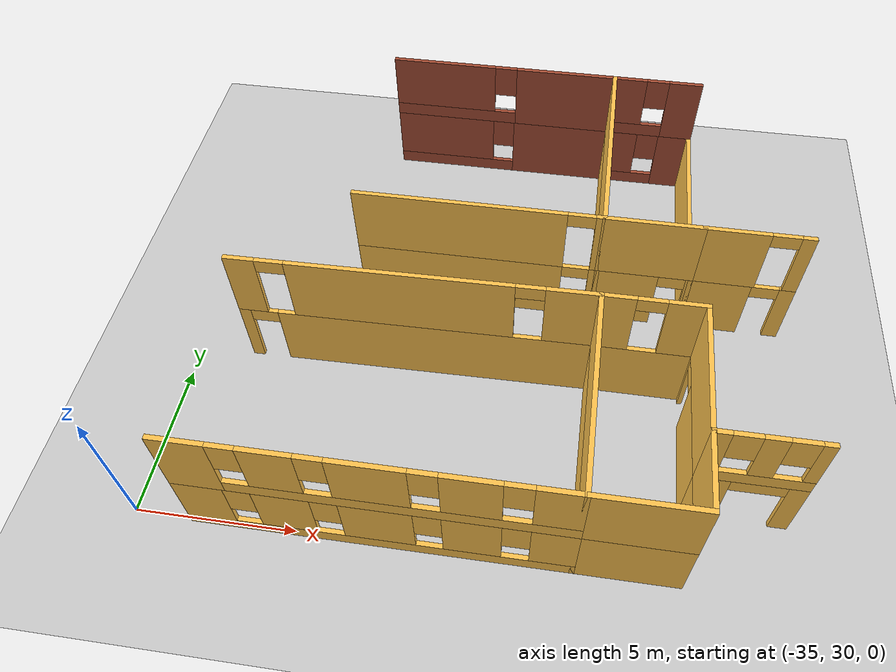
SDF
<sdf version="1.7">
 <world name="default">
  <model name="ground_plane">
   <static>1</static>
   <link name="link">
    <collision name="collision">
     <geometry><plane><normal>0 0 1</normal><size>100 100</size></plane></geometry>
     <surface>
      <contact><collide_bitmask>65535</collide_bitmask></contact>
      <friction><ode><mu>100</mu><mu2>50</mu2></ode></friction>
     </surface>
    </collision>
    <visual name="visual">
     <cast_shadows>0</cast_shadows>
     <geometry><plane><normal>0 0 1</normal><size>100 100</size></plane></geometry>
     <material>
      <script><uri>file://media/materials/scripts/gazebo.material</uri><name>Gazebo/Grey</name></script>
     </material>
    </visual>
   </link>
  </model>
  <model name="DepartmentBuilding">
   <pose>-25.6559 18.8293 0 0 -0 0</pose>
   <link name="Wall_250">
    <collision name="Wall_250_Collision">
     <geometry><box><size>7.25 0.15 2.5</size></box></geometry>
     <pose>0 0 1.25 0 -0 0</pose>
    </collision>
    <visual name="Wall_250_Visual">
     <pose>0 0 1.25 0 -0 0</pose>
     <geometry><box><size>7.25 0.15 2.5</size></box></geometry>
     <material>
      <script><uri>file://media/materials/scripts/gazebo.material</uri><name>Gazebo/Grey</name></script>
      <ambient>1 0.764706 0.305882 1</ambient>
     </material>
     <meta><layer>0</layer></meta>
    </visual>
    <pose>6.91941 24.1391 0 0 -0 -1.5708</pose>
   </link>
   <link name="Wall_251">
    <pose>8.59441 20.5891 0 0 -0 0</pose>
    <visual name="Wall_251_Visual_0">
     <pose>-0.710133 0 1.25 0 -0 0</pose>
     <geometry><box><size>2.07973 0.15 2.5</size></box></geometry>
     <material>
      <script><uri>file://media/materials/scripts/gazebo.material</uri><name>Gazebo/Grey</name></script>
      <ambient>1 0.764706 0.305882 1</ambient>
     </material>
     <meta><layer>0</layer></meta>
    </visual>
    <collision name="Wall_251_Collision_0">
     <geometry><box><size>2.07973 0.15 2.5</size></box></geometry>
     <pose>-0.710133 0 1.25 0 -0 0</pose>
    </collision>
    <visual name="Wall_251_Visual_1">
     <pose>1.48987 0 1.25 0 -0 0</pose>
     <geometry><box><size>0.520267 0.15 2.5</size></box></geometry>
     <material>
      <script><uri>file://media/materials/scripts/gazebo.material</uri><name>Gazebo/Grey</name></script>
      <ambient>1 0.764706 0.305882 1</ambient>
     </material>
     <meta><layer>0</layer></meta>
    </visual>
    <collision name="Wall_251_Collision_1">
     <geometry><box><size>0.520267 0.15 2.5</size></box></geometry>
     <pose>1.48987 0 1.25 0 -0 0</pose>
    </collision>
    <visual name="Wall_251_Visual_2">
     <pose>0.779733 0 2.25 0 -0 0</pose>
     <geometry><box><size>0.9 0.15 0.5</size></box></geometry>
     <material>
      <script><uri>file://media/materials/scripts/gazebo.material</uri><name>Gazebo/Grey</name></script>
      <ambient>1 0.764706 0.305882 1</ambient>
     </material>
     <meta><layer>0</layer></meta>
    </visual>
    <collision name="Wall_251_Collision_2">
     <geometry><box><size>0.9 0.15 0.5</size></box></geometry>
     <pose>0.779733 0 2.25 0 -0 0</pose>
    </collision>
   </link>
   <link name="Wall_253">
    <pose>5.36941 27.6891 0 0 -0 3.14159</pose>
    <visual name="Wall_253_Visual_0">
     <pose>-1.01415 0 1.25 0 -0 0</pose>
     <geometry><box><size>1.22169 0.15 2.5</size></box></geometry>
     <material>
      <script><uri>file://media/materials/scripts/gazebo.material</uri><name>Gazebo/Bricks</name></script>
      <ambient>1 1 1 1</ambient>
     </material>
     <meta><layer>0</layer></meta>
    </visual>
    <collision name="Wall_253_Collision_0">
     <geometry><box><size>1.22169 0.15 2.5</size></box></geometry>
     <pose>-1.01415 0 1.25 0 -0 0</pose>
    </collision>
    <visual name="Wall_253_Visual_1">
     <pose>0.610846 0 0.25 0 -0 0</pose>
     <geometry><box><size>2.02831 0.15 0.5</size></box></geometry>
     <material>
      <script><uri>file://media/materials/scripts/gazebo.material</uri><name>Gazebo/Bricks</name></script>
      <ambient>1 1 1 1</ambient>
     </material>
     <meta><layer>0</layer></meta>
    </visual>
    <collision name="Wall_253_Collision_1">
     <geometry><box><size>2.02831 0.15 0.5</size></box></geometry>
     <pose>0.610846 0 0.25 0 -0 0</pose>
    </collision>
    <visual name="Wall_253_Visual_2">
     <pose>1.01085 0 1.5 0 -0 0</pose>
     <geometry><box><size>1.22831 0.15 2</size></box></geometry>
     <material>
      <script><uri>file://media/materials/scripts/gazebo.material</uri><name>Gazebo/Bricks</name></script>
      <ambient>1 1 1 1</ambient>
     </material>
     <meta><layer>0</layer></meta>
    </visual>
    <collision name="Wall_253_Collision_2">
     <geometry><box><size>1.22831 0.15 2</size></box></geometry>
     <pose>1.01085 0 1.5 0 -0 0</pose>
    </collision>
    <visual name="Wall_253_Visual_3">
     <pose>-0.003308 0 1.9 0 -0 0</pose>
     <geometry><box><size>0.8 0.15 1.2</size></box></geometry>
     <material>
      <script><uri>file://media/materials/scripts/gazebo.material</uri><name>Gazebo/Bricks</name></script>
      <ambient>1 1 1 1</ambient>
     </material>
     <meta><layer>0</layer></meta>
    </visual>
    <collision name="Wall_253_Collision_3">
     <geometry><box><size>0.8 0.15 1.2</size></box></geometry>
     <pose>-0.003308 0 1.9 0 -0 0</pose>
    </collision>
   </link>
   <link name="Wall_254">
    <collision name="Wall_254_Collision">
     <geometry><box><size>7.25 0.15 2.5</size></box></geometry>
     <pose>0 0 1.25 0 -0 0</pose>
    </collision>
    <visual name="Wall_254_Visual">
     <pose>0 0 1.25 0 -0 0</pose>
     <geometry><box><size>7.25 0.15 2.5</size></box></geometry>
     <material>
      <script><uri>file://media/materials/scripts/gazebo.material</uri><name>Gazebo/Grey</name></script>
      <ambient>1 0.764706 0.305882 1</ambient>
     </material>
     <meta><layer>0</layer></meta>
    </visual>
    <pose>3.81941 24.1391 0 0 -0 -1.5708</pose>
   </link>
   <link name="Wall_255">
    <pose>5.36941 20.5891 0 0 -0 0</pose>
    <visual name="Wall_255_Visual_0">
     <pose>-0.563613 0 1.25 0 -0 0</pose>
     <geometry><box><size>2.12277 0.15 2.5</size></box></geometry>
     <material>
      <script><uri>file://media/materials/scripts/gazebo.material</uri><name>Gazebo/Grey</name></script>
      <ambient>1 0.764706 0.305882 1</ambient>
     </material>
     <meta><layer>0</layer></meta>
    </visual>
    <collision name="Wall_255_Collision_0">
     <geometry><box><size>2.12277 0.15 2.5</size></box></geometry>
     <pose>-0.563613 0 1.25 0 -0 0</pose>
    </collision>
    <visual name="Wall_255_Visual_1">
     <pose>1.51139 0 1.25 0 -0 0</pose>
     <geometry><box><size>0.227226 0.15 2.5</size></box></geometry>
     <material>
      <script><uri>file://media/materials/scripts/gazebo.material</uri><name>Gazebo/Grey</name></script>
      <ambient>1 0.764706 0.305882 1</ambient>
     </material>
     <meta><layer>0</layer></meta>
    </visual>
    <collision name="Wall_255_Collision_1">
     <geometry><box><size>0.227226 0.15 2.5</size></box></geometry>
     <pose>1.51139 0 1.25 0 -0 0</pose>
    </collision>
    <visual name="Wall_255_Visual_2">
     <pose>0.947774 0 2.25 0 -0 0</pose>
     <geometry><box><size>0.9 0.15 0.5</size></box></geometry>
     <material>
      <script><uri>file://media/materials/scripts/gazebo.material</uri><name>Gazebo/Grey</name></script>
      <ambient>1 0.764706 0.305882 1</ambient>
     </material>
     <meta><layer>0</layer></meta>
    </visual>
    <collision name="Wall_255_Collision_2">
     <geometry><box><size>0.9 0.15 0.5</size></box></geometry>
     <pose>0.947774 0 2.25 0 -0 0</pose>
    </collision>
   </link>
   <link name="Wall_257">
    <pose>-0.230591 27.6891 0 0 -0 3.14159</pose>
    <visual name="Wall_257_Visual_0">
     <pose>-2.27335 0 1.25 0 -0 0</pose>
     <geometry><box><size>3.7033 0.15 2.5</size></box></geometry>
     <material>
      <script><uri>file://media/materials/scripts/gazebo.material</uri><name>Gazebo/Bricks</name></script>
      <ambient>1 1 1 1</ambient>
     </material>
     <meta><layer>0</layer></meta>
    </visual>
    <collision name="Wall_257_Collision_0">
     <geometry><box><size>3.7033 0.15 2.5</size></box></geometry>
     <pose>-2.27335 0 1.25 0 -0 0</pose>
    </collision>
    <visual name="Wall_257_Visual_1">
     <pose>1.85165 0 0.25 0 -0 0</pose>
     <geometry><box><size>4.5467 0.15 0.5</size></box></geometry>
     <material>
      <script><uri>file://media/materials/scripts/gazebo.material</uri><name>Gazebo/Bricks</name></script>
      <ambient>1 1 1 1</ambient>
     </material>
     <meta><layer>0</layer></meta>
    </visual>
    <collision name="Wall_257_Collision_1">
     <geometry><box><size>4.5467 0.15 0.5</size></box></geometry>
     <pose>1.85165 0 0.25 0 -0 0</pose>
    </collision>
    <visual name="Wall_257_Visual_2">
     <pose>2.25165 0 1.5 0 -0 0</pose>
     <geometry><box><size>3.7467 0.15 2</size></box></geometry>
     <material>
      <script><uri>file://media/materials/scripts/gazebo.material</uri><name>Gazebo/Bricks</name></script>
      <ambient>1 1 1 1</ambient>
     </material>
     <meta><layer>0</layer></meta>
    </visual>
    <collision name="Wall_257_Collision_2">
     <geometry><box><size>3.7467 0.15 2</size></box></geometry>
     <pose>2.25165 0 1.5 0 -0 0</pose>
    </collision>
    <visual name="Wall_257_Visual_3">
     <pose>-0.021696 0 1.9 0 -0 0</pose>
     <geometry><box><size>0.8 0.15 1.2</size></box></geometry>
     <material>
      <script><uri>file://media/materials/scripts/gazebo.material</uri><name>Gazebo/Bricks</name></script>
      <ambient>1 1 1 1</ambient>
     </material>
     <meta><layer>0</layer></meta>
    </visual>
    <collision name="Wall_257_Collision_3">
     <geometry><box><size>0.8 0.15 1.2</size></box></geometry>
     <pose>-0.021696 0 1.9 0 -0 0</pose>
    </collision>
   </link>
   <link name="Wall_260">
    <pose>-0.230591 20.5891 0 0 -0 0</pose>
    <visual name="Wall_260_Visual_0">
     <pose>-0.62574 0 1.25 0 -0 0</pose>
     <geometry><box><size>6.99852 0.15 2.5</size></box></geometry>
     <material>
      <script><uri>file://media/materials/scripts/gazebo.material</uri><name>Gazebo/Grey</name></script>
      <ambient>1 0.764706 0.305882 1</ambient>
     </material>
     <meta><layer>0</layer></meta>
    </visual>
    <collision name="Wall_260_Collision_0">
     <geometry><box><size>6.99852 0.15 2.5</size></box></geometry>
     <pose>-0.62574 0 1.25 0 -0 0</pose>
    </collision>
    <visual name="Wall_260_Visual_1">
     <pose>3.94926 0 1.25 0 -0 0</pose>
     <geometry><box><size>0.351481 0.15 2.5</size></box></geometry>
     <material>
      <script><uri>file://media/materials/scripts/gazebo.material</uri><name>Gazebo/Grey</name></script>
      <ambient>1 0.764706 0.305882 1</ambient>
     </material>
     <meta><layer>0</layer></meta>
    </visual>
    <collision name="Wall_260_Collision_1">
     <geometry><box><size>0.351481 0.15 2.5</size></box></geometry>
     <pose>3.94926 0 1.25 0 -0 0</pose>
    </collision>
    <visual name="Wall_260_Visual_2">
     <pose>3.32352 0 2.25 0 -0 0</pose>
     <geometry><box><size>0.9 0.15 0.5</size></box></geometry>
     <material>
      <script><uri>file://media/materials/scripts/gazebo.material</uri><name>Gazebo/Grey</name></script>
      <ambient>1 0.764706 0.305882 1</ambient>
     </material>
     <meta><layer>0</layer></meta>
    </visual>
    <collision name="Wall_260_Collision_2">
     <geometry><box><size>0.9 0.15 0.5</size></box></geometry>
     <pose>3.32352 0 2.25 0 -0 0</pose>
    </collision>
   </link>
   <link name="Wall_314">
    <pose>-1.80559 11.1391 0 0 -0 0</pose>
    <visual name="Wall_314_Visual_0">
     <pose>-4.993 0 1.25 0 -0 0</pose>
     <geometry><box><size>1.51401 0.15 2.5</size></box></geometry>
     <material>
      <script><uri>file://media/materials/scripts/gazebo.material</uri><name>Gazebo/Grey</name></script>
      <ambient>1 0.764706 0.305882 1</ambient>
     </material>
     <meta><layer>0</layer></meta>
    </visual>
    <collision name="Wall_314_Collision_0">
     <geometry><box><size>1.51401 0.15 2.5</size></box></geometry>
     <pose>-4.993 0 1.25 0 -0 0</pose>
    </collision>
    <visual name="Wall_314_Visual_1">
     <pose>0.757004 0 0.25 0 -0 0</pose>
     <geometry><box><size>9.98599 0.15 0.5</size></box></geometry>
     <material>
      <script><uri>file://media/materials/scripts/gazebo.material</uri><name>Gazebo/Grey</name></script>
      <ambient>1 0.764706 0.305882 1</ambient>
     </material>
     <meta><layer>0</layer></meta>
    </visual>
    <collision name="Wall_314_Collision_1">
     <geometry><box><size>9.98599 0.15 0.5</size></box></geometry>
     <pose>0.757004 0 0.25 0 -0 0</pose>
    </collision>
    <visual name="Wall_314_Visual_2">
     <pose>-2.5985 0 1.5 0 -0 0</pose>
     <geometry><box><size>1.67498 0.15 2</size></box></geometry>
     <material>
      <script><uri>file://media/materials/scripts/gazebo.material</uri><name>Gazebo/Grey</name></script>
      <ambient>1 0.764706 0.305882 1</ambient>
     </material>
     <meta><layer>0</layer></meta>
    </visual>
    <collision name="Wall_314_Collision_2">
     <geometry><box><size>1.67498 0.15 2</size></box></geometry>
     <pose>-2.5985 0 1.5 0 -0 0</pose>
    </collision>
    <visual name="Wall_314_Visual_3">
     <pose>0.084647 0 1.5 0 -0 0</pose>
     <geometry><box><size>2.09133 0.15 2</size></box></geometry>
     <material>
      <script><uri>file://media/materials/scripts/gazebo.material</uri><name>Gazebo/Grey</name></script>
      <ambient>1 0.764706 0.305882 1</ambient>
     </material>
     <meta><layer>0</layer></meta>
    </visual>
    <collision name="Wall_314_Collision_3">
     <geometry><box><size>2.09133 0.15 2</size></box></geometry>
     <pose>0.084647 0 1.5 0 -0 0</pose>
    </collision>
    <visual name="Wall_314_Visual_4">
     <pose>2.7678 0 1.5 0 -0 0</pose>
     <geometry><box><size>1.67498 0.15 2</size></box></geometry>
     <material>
      <script><uri>file://media/materials/scripts/gazebo.material</uri><name>Gazebo/Grey</name></script>
      <ambient>1 0.764706 0.305882 1</ambient>
     </material>
     <meta><layer>0</layer></meta>
    </visual>
    <collision name="Wall_314_Collision_4">
     <geometry><box><size>1.67498 0.15 2</size></box></geometry>
     <pose>2.7678 0 1.5 0 -0 0</pose>
    </collision>
    <visual name="Wall_314_Visual_5">
     <pose>5.07764 0 1.5 0 -0 0</pose>
     <geometry><box><size>1.34472 0.15 2</size></box></geometry>
     <material>
      <script><uri>file://media/materials/scripts/gazebo.material</uri><name>Gazebo/Grey</name></script>
      <ambient>1 0.764706 0.305882 1</ambient>
     </material>
     <meta><layer>0</layer></meta>
    </visual>
    <collision name="Wall_314_Collision_5">
     <geometry><box><size>1.34472 0.15 2</size></box></geometry>
     <pose>5.07764 0 1.5 0 -0 0</pose>
    </collision>
    <visual name="Wall_314_Visual_6">
     <pose>-3.83599 0 1.9 0 -0 0</pose>
     <geometry><box><size>0.8 0.15 1.2</size></box></geometry>
     <material>
      <script><uri>file://media/materials/scripts/gazebo.material</uri><name>Gazebo/Grey</name></script>
      <ambient>1 0.764706 0.305882 1</ambient>
     </material>
     <meta><layer>0</layer></meta>
    </visual>
    <collision name="Wall_314_Collision_6">
     <geometry><box><size>0.8 0.15 1.2</size></box></geometry>
     <pose>-3.83599 0 1.9 0 -0 0</pose>
    </collision>
    <visual name="Wall_314_Visual_7">
     <pose>-1.36102 0 1.9 0 -0 0</pose>
     <geometry><box><size>0.8 0.15 1.2</size></box></geometry>
     <material>
      <script><uri>file://media/materials/scripts/gazebo.material</uri><name>Gazebo/Grey</name></script>
      <ambient>1 0.764706 0.305882 1</ambient>
     </material>
     <meta><layer>0</layer></meta>
    </visual>
    <collision name="Wall_314_Collision_7">
     <geometry><box><size>0.8 0.15 1.2</size></box></geometry>
     <pose>-1.36102 0 1.9 0 -0 0</pose>
    </collision>
    <visual name="Wall_314_Visual_8">
     <pose>1.53031 0 1.9 0 -0 0</pose>
     <geometry><box><size>0.8 0.15 1.2</size></box></geometry>
     <material>
      <script><uri>file://media/materials/scripts/gazebo.material</uri><name>Gazebo/Grey</name></script>
      <ambient>1 0.764706 0.305882 1</ambient>
     </material>
     <meta><layer>0</layer></meta>
    </visual>
    <collision name="Wall_314_Collision_8">
     <geometry><box><size>0.8 0.15 1.2</size></box></geometry>
     <pose>1.53031 0 1.9 0 -0 0</pose>
    </collision>
    <visual name="Wall_314_Visual_9">
     <pose>4.00528 0 1.9 0 -0 0</pose>
     <geometry><box><size>0.8 0.15 1.2</size></box></geometry>
     <material>
      <script><uri>file://media/materials/scripts/gazebo.material</uri><name>Gazebo/Grey</name></script>
      <ambient>1 0.764706 0.305882 1</ambient>
     </material>
     <meta><layer>0</layer></meta>
    </visual>
    <collision name="Wall_314_Collision_9">
     <geometry><box><size>0.8 0.15 1.2</size></box></geometry>
     <pose>4.00528 0 1.9 0 -0 0</pose>
    </collision>
   </link>
   <link name="Wall_315">
    <collision name="Wall_315_Collision">
     <geometry><box><size>6.5 0.15 2.5</size></box></geometry>
     <pose>0 0 1.25 0 -0 0</pose>
    </collision>
    <visual name="Wall_315_Visual">
     <pose>0 0 1.25 0 -0 0</pose>
     <geometry><box><size>6.5 0.15 2.5</size></box></geometry>
     <material>
      <script><uri>file://media/materials/scripts/gazebo.material</uri><name>Gazebo/Grey</name></script>
      <ambient>1 0.764706 0.305882 1</ambient>
     </material>
     <meta><layer>0</layer></meta>
    </visual>
    <pose>3.86941 14.3141 0 0 -0 1.5708</pose>
   </link>
   <link name="Wall_316">
    <pose>-1.80559 17.4141 0 0 -0 -3.12838</pose>
    <visual name="Wall_316_Visual_0">
     <pose>-0.64266 0 1.25 0 -0 0</pose>
     <geometry><box><size>10.2157 0.15 2.5</size></box></geometry>
     <material>
      <script><uri>file://media/materials/scripts/gazebo.material</uri><name>Gazebo/Grey</name></script>
      <ambient>1 0.764706 0.305882 1</ambient>
     </material>
     <meta><layer>0</layer></meta>
    </visual>
    <collision name="Wall_316_Collision_0">
     <geometry><box><size>10.2157 0.15 2.5</size></box></geometry>
     <pose>-0.64266 0 1.25 0 -0 0</pose>
    </collision>
    <visual name="Wall_316_Visual_1">
     <pose>5.55783 0 1.25 0 -0 0</pose>
     <geometry><box><size>0.38532 0.15 2.5</size></box></geometry>
     <material>
      <script><uri>file://media/materials/scripts/gazebo.material</uri><name>Gazebo/Grey</name></script>
      <ambient>1 0.764706 0.305882 1</ambient>
     </material>
     <meta><layer>0</layer></meta>
    </visual>
    <collision name="Wall_316_Collision_1">
     <geometry><box><size>0.38532 0.15 2.5</size></box></geometry>
     <pose>5.55783 0 1.25 0 -0 0</pose>
    </collision>
    <visual name="Wall_316_Visual_2">
     <pose>4.91517 0 2.25 0 -0 0</pose>
     <geometry><box><size>0.9 0.15 0.5</size></box></geometry>
     <material>
      <script><uri>file://media/materials/scripts/gazebo.material</uri><name>Gazebo/Grey</name></script>
      <ambient>1 0.764706 0.305882 1</ambient>
     </material>
     <meta><layer>0</layer></meta>
    </visual>
    <collision name="Wall_316_Collision_2">
     <geometry><box><size>0.9 0.15 0.5</size></box></geometry>
     <pose>4.91517 0 2.25 0 -0 0</pose>
    </collision>
   </link>
   <link name="Wall_318">
    <collision name="Wall_318_Collision">
     <geometry><box><size>3.25 0.15 2.5</size></box></geometry>
     <pose>0 0 1.25 0 -0 0</pose>
    </collision>
    <visual name="Wall_318_Visual">
     <pose>0 0 1.25 0 -0 0</pose>
     <geometry><box><size>3.25 0.15 2.5</size></box></geometry>
     <material>
      <script><uri>file://media/materials/scripts/gazebo.material</uri><name>Gazebo/Grey</name></script>
      <ambient>1 0.764706 0.305882 1</ambient>
     </material>
     <meta><layer>0</layer></meta>
    </visual>
    <pose>5.41941 17.4891 0 0 -0 0</pose>
   </link>
   <link name="Wall_319">
    <pose>6.96941 15.4391 0 0 -0 -1.5708</pose>
    <visual name="Wall_319_Visual_0">
     <pose>-1.97536 0 1.25 0 -0 0</pose>
     <geometry><box><size>0.299289 0.15 2.5</size></box></geometry>
     <material>
      <script><uri>file://media/materials/scripts/gazebo.material</uri><name>Gazebo/Grey</name></script>
      <ambient>1 0.764706 0.305882 1</ambient>
     </material>
     <meta><layer>0</layer></meta>
    </visual>
    <collision name="Wall_319_Collision_0">
     <geometry><box><size>0.299289 0.15 2.5</size></box></geometry>
     <pose>-1.97536 0 1.25 0 -0 0</pose>
    </collision>
    <visual name="Wall_319_Visual_1">
     <pose>0.599644 0 1.25 0 -0 0</pose>
     <geometry><box><size>3.05071 0.15 2.5</size></box></geometry>
     <material>
      <script><uri>file://media/materials/scripts/gazebo.material</uri><name>Gazebo/Grey</name></script>
      <ambient>1 0.764706 0.305882 1</ambient>
     </material>
     <meta><layer>0</layer></meta>
    </visual>
    <collision name="Wall_319_Collision_1">
     <geometry><box><size>3.05071 0.15 2.5</size></box></geometry>
     <pose>0.599644 0 1.25 0 -0 0</pose>
    </collision>
    <visual name="Wall_319_Visual_2">
     <pose>-1.37571 0 2.25 0 -0 0</pose>
     <geometry><box><size>0.9 0.15 0.5</size></box></geometry>
     <material>
      <script><uri>file://media/materials/scripts/gazebo.material</uri><name>Gazebo/Grey</name></script>
      <ambient>1 0.764706 0.305882 1</ambient>
     </material>
     <meta><layer>0</layer></meta>
    </visual>
    <collision name="Wall_319_Collision_2">
     <geometry><box><size>0.9 0.15 0.5</size></box></geometry>
     <pose>-1.37571 0 2.25 0 -0 0</pose>
    </collision>
   </link>
   <link name="Wall_320">
    <collision name="Wall_320_Collision">
     <geometry><box><size>2.4 0.15 2.5</size></box></geometry>
     <pose>0 0 1.25 0 -0 0</pose>
    </collision>
    <visual name="Wall_320_Visual">
     <pose>0 0 1.25 0 -0 0</pose>
     <geometry><box><size>2.4 0.15 2.5</size></box></geometry>
     <material>
      <script><uri>file://media/materials/scripts/gazebo.material</uri><name>Gazebo/Grey</name></script>
      <ambient>1 0.764706 0.305882 1</ambient>
     </material>
     <meta><layer>0</layer></meta>
    </visual>
    <pose>6.96941 12.2641 0 0 -0 -1.5708</pose>
   </link>
   <link name="Wall_322">
    <collision name="Wall_322_Collision">
     <geometry><box><size>3.25 0.15 2.5</size></box></geometry>
     <pose>0 0 1.25 0 -0 0</pose>
    </collision>
    <visual name="Wall_322_Visual">
     <pose>0 0 1.25 0 -0 0</pose>
     <geometry><box><size>3.25 0.15 2.5</size></box></geometry>
     <material>
      <script><uri>file://media/materials/scripts/gazebo.material</uri><name>Gazebo/Grey</name></script>
      <ambient>1 0.764706 0.305882 1</ambient>
     </material>
     <meta><layer>0</layer></meta>
    </visual>
    <pose>5.41941 11.1391 0 0 -0 3.14159</pose>
   </link>
   <link name="Wall_324">
    <pose>8.51941 13.3891 0 0 -0 0</pose>
    <visual name="Wall_324_Visual_0">
     <pose>-1.08723 0 1.25 0 -0 0</pose>
     <geometry><box><size>1.07554 0.15 2.5</size></box></geometry>
     <material>
      <script><uri>file://media/materials/scripts/gazebo.material</uri><name>Gazebo/Grey</name></script>
      <ambient>1 0.764706 0.305882 1</ambient>
     </material>
     <meta><layer>0</layer></meta>
    </visual>
    <collision name="Wall_324_Collision_0">
     <geometry><box><size>1.07554 0.15 2.5</size></box></geometry>
     <pose>-1.08723 0 1.25 0 -0 0</pose>
    </collision>
    <visual name="Wall_324_Visual_1">
     <pose>1.33777 0 1.25 0 -0 0</pose>
     <geometry><box><size>0.574459 0.15 2.5</size></box></geometry>
     <material>
      <script><uri>file://media/materials/scripts/gazebo.material</uri><name>Gazebo/Grey</name></script>
      <ambient>1 0.764706 0.305882 1</ambient>
     </material>
     <meta><layer>0</layer></meta>
    </visual>
    <collision name="Wall_324_Collision_1">
     <geometry><box><size>0.574459 0.15 2.5</size></box></geometry>
     <pose>1.33777 0 1.25 0 -0 0</pose>
    </collision>
    <visual name="Wall_324_Visual_2">
     <pose>0.250541 0 2.25 0 -0 0</pose>
     <geometry><box><size>1.6 0.15 0.5</size></box></geometry>
     <material>
      <script><uri>file://media/materials/scripts/gazebo.material</uri><name>Gazebo/Grey</name></script>
      <ambient>1 0.764706 0.305882 1</ambient>
     </material>
     <meta><layer>0</layer></meta>
    </visual>
    <collision name="Wall_324_Collision_2">
     <geometry><box><size>1.6 0.15 0.5</size></box></geometry>
     <pose>0.250541 0 2.25 0 -0 0</pose>
    </collision>
   </link>
   <link name="Wall_923">
    <pose>8.59441 20.5891 2.5 0 -0 0</pose>
    <visual name="Wall_923_Visual_0">
     <pose>-0.679921 0 1.25 0 -0 0</pose>
     <geometry><box><size>2.14016 0.15 2.5</size></box></geometry>
     <material>
      <script><uri>file://media/materials/scripts/gazebo.material</uri><name>Gazebo/Grey</name></script>
      <ambient>1 0.764706 0.305882 1</ambient>
     </material>
     <meta><layer>1</layer></meta>
    </visual>
    <collision name="Wall_923_Collision_0">
     <geometry><box><size>2.14016 0.15 2.5</size></box></geometry>
     <pose>-0.679921 0 1.25 0 -0 0</pose>
    </collision>
    <visual name="Wall_923_Visual_1">
     <pose>1.52008 0 1.25 0 -0 0</pose>
     <geometry><box><size>0.459843 0.15 2.5</size></box></geometry>
     <material>
      <script><uri>file://media/materials/scripts/gazebo.material</uri><name>Gazebo/Grey</name></script>
      <ambient>1 0.764706 0.305882 1</ambient>
     </material>
     <meta><layer>1</layer></meta>
    </visual>
    <collision name="Wall_923_Collision_1">
     <geometry><box><size>0.459843 0.15 2.5</size></box></geometry>
     <pose>1.52008 0 1.25 0 -0 0</pose>
    </collision>
    <visual name="Wall_923_Visual_2">
     <pose>0.840157 0 2.25 0 -0 0</pose>
     <geometry><box><size>0.9 0.15 0.5</size></box></geometry>
     <material>
      <script><uri>file://media/materials/scripts/gazebo.material</uri><name>Gazebo/Grey</name></script>
      <ambient>1 0.764706 0.305882 1</ambient>
     </material>
     <meta><layer>1</layer></meta>
    </visual>
    <collision name="Wall_923_Collision_2">
     <geometry><box><size>0.9 0.15 0.5</size></box></geometry>
     <pose>0.840157 0 2.25 0 -0 0</pose>
    </collision>
   </link>
   <link name="Wall_924">
    <pose>5.36941 27.6891 2.5 0 -0 3.14159</pose>
    <visual name="Wall_924_Visual_0">
     <pose>-1.02768 0 1.25 0 -0 0</pose>
     <geometry><box><size>1.19464 0.15 2.5</size></box></geometry>
     <material>
      <script><uri>file://media/materials/scripts/gazebo.material</uri><name>Gazebo/Bricks</name></script>
      <ambient>1 1 1 1</ambient>
     </material>
     <meta><layer>1</layer></meta>
    </visual>
    <collision name="Wall_924_Collision_0">
     <geometry><box><size>1.19464 0.15 2.5</size></box></geometry>
     <pose>-1.02768 0 1.25 0 -0 0</pose>
    </collision>
    <visual name="Wall_924_Visual_1">
     <pose>0.59732 0 0.25 0 -0 0</pose>
     <geometry><box><size>2.05536 0.15 0.5</size></box></geometry>
     <material>
      <script><uri>file://media/materials/scripts/gazebo.material</uri><name>Gazebo/Bricks</name></script>
      <ambient>1 1 1 1</ambient>
     </material>
     <meta><layer>1</layer></meta>
    </visual>
    <collision name="Wall_924_Collision_1">
     <geometry><box><size>2.05536 0.15 0.5</size></box></geometry>
     <pose>0.59732 0 0.25 0 -0 0</pose>
    </collision>
    <visual name="Wall_924_Visual_2">
     <pose>0.99732 0 1.5 0 -0 0</pose>
     <geometry><box><size>1.25536 0.15 2</size></box></geometry>
     <material>
      <script><uri>file://media/materials/scripts/gazebo.material</uri><name>Gazebo/Bricks</name></script>
      <ambient>1 1 1 1</ambient>
     </material>
     <meta><layer>1</layer></meta>
    </visual>
    <collision name="Wall_924_Collision_2">
     <geometry><box><size>1.25536 0.15 2</size></box></geometry>
     <pose>0.99732 0 1.5 0 -0 0</pose>
    </collision>
    <visual name="Wall_924_Visual_3">
     <pose>-0.030359 0 1.9 0 -0 0</pose>
     <geometry><box><size>0.8 0.15 1.2</size></box></geometry>
     <material>
      <script><uri>file://media/materials/scripts/gazebo.material</uri><name>Gazebo/Bricks</name></script>
      <ambient>1 1 1 1</ambient>
     </material>
     <meta><layer>1</layer></meta>
    </visual>
    <collision name="Wall_924_Collision_3">
     <geometry><box><size>0.8 0.15 1.2</size></box></geometry>
     <pose>-0.030359 0 1.9 0 -0 0</pose>
    </collision>
   </link>
   <link name="Wall_925">
    <collision name="Wall_925_Collision">
     <geometry><box><size>7.25 0.15 2.5</size></box></geometry>
     <pose>0 0 1.25 0 -0 0</pose>
    </collision>
    <visual name="Wall_925_Visual">
     <pose>0 0 1.25 0 -0 0</pose>
     <geometry><box><size>7.25 0.15 2.5</size></box></geometry>
     <material>
      <script><uri>file://media/materials/scripts/gazebo.material</uri><name>Gazebo/Grey</name></script>
      <ambient>1 0.764706 0.305882 1</ambient>
     </material>
     <meta><layer>1</layer></meta>
    </visual>
    <pose>3.81941 24.1391 2.5 0 -0 -1.5708</pose>
   </link>
   <link name="Wall_926">
    <collision name="Wall_926_Collision">
     <geometry><box><size>3.25 0.15 2.5</size></box></geometry>
     <pose>0 0 1.25 0 -0 0</pose>
    </collision>
    <visual name="Wall_926_Visual">
     <pose>0 0 1.25 0 -0 0</pose>
     <geometry><box><size>3.25 0.15 2.5</size></box></geometry>
     <material>
      <script><uri>file://media/materials/scripts/gazebo.material</uri><name>Gazebo/Grey</name></script>
      <ambient>1 0.764706 0.305882 1</ambient>
     </material>
     <meta><layer>1</layer></meta>
    </visual>
    <pose>5.36941 20.5891 2.5 0 -0 0</pose>
   </link>
   <link name="Wall_927">
    <pose>-0.230591 27.6891 2.5 0 -0 3.14159</pose>
    <visual name="Wall_927_Visual_0">
     <pose>-2.29195 0 1.25 0 -0 0</pose>
     <geometry><box><size>3.6661 0.15 2.5</size></box></geometry>
     <material>
      <script><uri>file://media/materials/scripts/gazebo.material</uri><name>Gazebo/Bricks</name></script>
      <ambient>1 1 1 1</ambient>
     </material>
     <meta><layer>1</layer></meta>
    </visual>
    <collision name="Wall_927_Collision_0">
     <geometry><box><size>3.6661 0.15 2.5</size></box></geometry>
     <pose>-2.29195 0 1.25 0 -0 0</pose>
    </collision>
    <visual name="Wall_927_Visual_1">
     <pose>1.83305 0 0.25 0 -0 0</pose>
     <geometry><box><size>4.5839 0.15 0.5</size></box></geometry>
     <material>
      <script><uri>file://media/materials/scripts/gazebo.material</uri><name>Gazebo/Bricks</name></script>
      <ambient>1 1 1 1</ambient>
     </material>
     <meta><layer>1</layer></meta>
    </visual>
    <collision name="Wall_927_Collision_1">
     <geometry><box><size>4.5839 0.15 0.5</size></box></geometry>
     <pose>1.83305 0 0.25 0 -0 0</pose>
    </collision>
    <visual name="Wall_927_Visual_2">
     <pose>2.23305 0 1.5 0 -0 0</pose>
     <geometry><box><size>3.7839 0.15 2</size></box></geometry>
     <material>
      <script><uri>file://media/materials/scripts/gazebo.material</uri><name>Gazebo/Bricks</name></script>
      <ambient>1 1 1 1</ambient>
     </material>
     <meta><layer>1</layer></meta>
    </visual>
    <collision name="Wall_927_Collision_2">
     <geometry><box><size>3.7839 0.15 2</size></box></geometry>
     <pose>2.23305 0 1.5 0 -0 0</pose>
    </collision>
    <visual name="Wall_927_Visual_3">
     <pose>-0.0589 0 1.9 0 -0 0</pose>
     <geometry><box><size>0.8 0.15 1.2</size></box></geometry>
     <material>
      <script><uri>file://media/materials/scripts/gazebo.material</uri><name>Gazebo/Bricks</name></script>
      <ambient>1 1 1 1</ambient>
     </material>
     <meta><layer>1</layer></meta>
    </visual>
    <collision name="Wall_927_Collision_3">
     <geometry><box><size>0.8 0.15 1.2</size></box></geometry>
     <pose>-0.0589 0 1.9 0 -0 0</pose>
    </collision>
   </link>
   <link name="Wall_929">
    <pose>-0.230591 20.5891 2.5 0 -0 0</pose>
    <visual name="Wall_929_Visual_0">
     <pose>-0.620345 0 1.25 0 -0 0</pose>
     <geometry><box><size>7.00931 0.15 2.5</size></box></geometry>
     <material>
      <script><uri>file://media/materials/scripts/gazebo.material</uri><name>Gazebo/Grey</name></script>
      <ambient>1 0.764706 0.305882 1</ambient>
     </material>
     <meta><layer>1</layer></meta>
    </visual>
    <collision name="Wall_929_Collision_0">
     <geometry><box><size>7.00931 0.15 2.5</size></box></geometry>
     <pose>-0.620345 0 1.25 0 -0 0</pose>
    </collision>
    <visual name="Wall_929_Visual_1">
     <pose>3.95465 0 1.25 0 -0 0</pose>
     <geometry><box><size>0.34069 0.15 2.5</size></box></geometry>
     <material>
      <script><uri>file://media/materials/scripts/gazebo.material</uri><name>Gazebo/Grey</name></script>
      <ambient>1 0.764706 0.305882 1</ambient>
     </material>
     <meta><layer>1</layer></meta>
    </visual>
    <collision name="Wall_929_Collision_1">
     <geometry><box><size>0.34069 0.15 2.5</size></box></geometry>
     <pose>3.95465 0 1.25 0 -0 0</pose>
    </collision>
    <visual name="Wall_929_Visual_2">
     <pose>3.33431 0 2.25 0 -0 0</pose>
     <geometry><box><size>0.9 0.15 0.5</size></box></geometry>
     <material>
      <script><uri>file://media/materials/scripts/gazebo.material</uri><name>Gazebo/Grey</name></script>
      <ambient>1 0.764706 0.305882 1</ambient>
     </material>
     <meta><layer>1</layer></meta>
    </visual>
    <collision name="Wall_929_Collision_2">
     <geometry><box><size>0.9 0.15 0.5</size></box></geometry>
     <pose>3.33431 0 2.25 0 -0 0</pose>
    </collision>
   </link>
   <link name="Wall_964">
    <pose>-1.80559 11.1391 2.5 0 -0 0</pose>
    <visual name="Wall_964_Visual_0">
     <pose>-4.94453 0 1.25 0 -0 0</pose>
     <geometry><box><size>1.61095 0.15 2.5</size></box></geometry>
     <material>
      <script><uri>file://media/materials/scripts/gazebo.material</uri><name>Gazebo/Grey</name></script>
      <ambient>1 0.764706 0.305882 1</ambient>
     </material>
     <meta><layer>1</layer></meta>
    </visual>
    <collision name="Wall_964_Collision_0">
     <geometry><box><size>1.61095 0.15 2.5</size></box></geometry>
     <pose>-4.94453 0 1.25 0 -0 0</pose>
    </collision>
    <visual name="Wall_964_Visual_1">
     <pose>0.805474 0 0.25 0 -0 0</pose>
     <geometry><box><size>9.88905 0.15 0.5</size></box></geometry>
     <material>
      <script><uri>file://media/materials/scripts/gazebo.material</uri><name>Gazebo/Grey</name></script>
      <ambient>1 0.764706 0.305882 1</ambient>
     </material>
     <meta><layer>1</layer></meta>
    </visual>
    <collision name="Wall_964_Collision_1">
     <geometry><box><size>9.88905 0.15 0.5</size></box></geometry>
     <pose>0.805474 0 0.25 0 -0 0</pose>
    </collision>
    <visual name="Wall_964_Visual_2">
     <pose>-2.57815 0 1.5 0 -0 0</pose>
     <geometry><box><size>1.5218 0.15 2</size></box></geometry>
     <material>
      <script><uri>file://media/materials/scripts/gazebo.material</uri><name>Gazebo/Grey</name></script>
      <ambient>1 0.764706 0.305882 1</ambient>
     </material>
     <meta><layer>1</layer></meta>
    </visual>
    <collision name="Wall_964_Collision_2">
     <geometry><box><size>1.5218 0.15 2</size></box></geometry>
     <pose>-2.57815 0 1.5 0 -0 0</pose>
    </collision>
    <visual name="Wall_964_Visual_3">
     <pose>0.060254 0 1.5 0 -0 0</pose>
     <geometry><box><size>2.15502 0.15 2</size></box></geometry>
     <material>
      <script><uri>file://media/materials/scripts/gazebo.material</uri><name>Gazebo/Grey</name></script>
      <ambient>1 0.764706 0.305882 1</ambient>
     </material>
     <meta><layer>1</layer></meta>
    </visual>
    <collision name="Wall_964_Collision_3">
     <geometry><box><size>2.15502 0.15 2</size></box></geometry>
     <pose>0.060254 0 1.5 0 -0 0</pose>
    </collision>
    <visual name="Wall_964_Visual_4">
     <pose>2.76902 0 1.5 0 -0 0</pose>
     <geometry><box><size>1.66251 0.15 2</size></box></geometry>
     <material>
      <script><uri>file://media/materials/scripts/gazebo.material</uri><name>Gazebo/Grey</name></script>
      <ambient>1 0.764706 0.305882 1</ambient>
     </material>
     <meta><layer>1</layer></meta>
    </visual>
    <collision name="Wall_964_Collision_4">
     <geometry><box><size>1.66251 0.15 2</size></box></geometry>
     <pose>2.76902 0 1.5 0 -0 0</pose>
    </collision>
    <visual name="Wall_964_Visual_5">
     <pose>5.07514 0 1.5 0 -0 0</pose>
     <geometry><box><size>1.34972 0.15 2</size></box></geometry>
     <material>
      <script><uri>file://media/materials/scripts/gazebo.material</uri><name>Gazebo/Grey</name></script>
      <ambient>1 0.764706 0.305882 1</ambient>
     </material>
     <meta><layer>1</layer></meta>
    </visual>
    <collision name="Wall_964_Collision_5">
     <geometry><box><size>1.34972 0.15 2</size></box></geometry>
     <pose>5.07514 0 1.5 0 -0 0</pose>
    </collision>
    <visual name="Wall_964_Visual_6">
     <pose>-3.73905 0 1.9 0 -0 0</pose>
     <geometry><box><size>0.8 0.15 1.2</size></box></geometry>
     <material>
      <script><uri>file://media/materials/scripts/gazebo.material</uri><name>Gazebo/Grey</name></script>
      <ambient>1 0.764706 0.305882 1</ambient>
     </material>
     <meta><layer>1</layer></meta>
    </visual>
    <collision name="Wall_964_Collision_6">
     <geometry><box><size>0.8 0.15 1.2</size></box></geometry>
     <pose>-3.73905 0 1.9 0 -0 0</pose>
    </collision>
    <visual name="Wall_964_Visual_7">
     <pose>-1.41725 0 1.9 0 -0 0</pose>
     <geometry><box><size>0.8 0.15 1.2</size></box></geometry>
     <material>
      <script><uri>file://media/materials/scripts/gazebo.material</uri><name>Gazebo/Grey</name></script>
      <ambient>1 0.764706 0.305882 1</ambient>
     </material>
     <meta><layer>1</layer></meta>
    </visual>
    <collision name="Wall_964_Collision_7">
     <geometry><box><size>0.8 0.15 1.2</size></box></geometry>
     <pose>-1.41725 0 1.9 0 -0 0</pose>
    </collision>
    <visual name="Wall_964_Visual_8">
     <pose>1.53776 0 1.9 0 -0 0</pose>
     <geometry><box><size>0.8 0.15 1.2</size></box></geometry>
     <material>
      <script><uri>file://media/materials/scripts/gazebo.material</uri><name>Gazebo/Grey</name></script>
      <ambient>1 0.764706 0.305882 1</ambient>
     </material>
     <meta><layer>1</layer></meta>
    </visual>
    <collision name="Wall_964_Collision_8">
     <geometry><box><size>0.8 0.15 1.2</size></box></geometry>
     <pose>1.53776 0 1.9 0 -0 0</pose>
    </collision>
    <visual name="Wall_964_Visual_9">
     <pose>4.00028 0 1.9 0 -0 0</pose>
     <geometry><box><size>0.8 0.15 1.2</size></box></geometry>
     <material>
      <script><uri>file://media/materials/scripts/gazebo.material</uri><name>Gazebo/Grey</name></script>
      <ambient>1 0.764706 0.305882 1</ambient>
     </material>
     <meta><layer>1</layer></meta>
    </visual>
    <collision name="Wall_964_Collision_9">
     <geometry><box><size>0.8 0.15 1.2</size></box></geometry>
     <pose>4.00028 0 1.9 0 -0 0</pose>
    </collision>
   </link>
   <link name="Wall_965">
    <collision name="Wall_965_Collision">
     <geometry><box><size>6.5 0.15 2.5</size></box></geometry>
     <pose>0 0 1.25 0 -0 0</pose>
    </collision>
    <visual name="Wall_965_Visual">
     <pose>0 0 1.25 0 -0 0</pose>
     <geometry><box><size>6.5 0.15 2.5</size></box></geometry>
     <material>
      <script><uri>file://media/materials/scripts/gazebo.material</uri><name>Gazebo/Grey</name></script>
      <ambient>1 0.764706 0.305882 1</ambient>
     </material>
     <meta><layer>1</layer></meta>
    </visual>
    <pose>3.86941 14.3141 2.5 0 -0 1.5708</pose>
   </link>
   <link name="Wall_966">
    <pose>-1.80559 17.4141 2.5 0 -0 -3.12838</pose>
    <visual name="Wall_966_Visual_0">
     <pose>-4.90031 0 1.25 0 -0 0</pose>
     <geometry><box><size>1.70038 0.15 2.5</size></box></geometry>
     <material>
      <script><uri>file://media/materials/scripts/gazebo.material</uri><name>Gazebo/Grey</name></script>
      <ambient>1 0.764706 0.305882 1</ambient>
     </material>
     <meta><layer>1</layer></meta>
    </visual>
    <collision name="Wall_966_Collision_0">
     <geometry><box><size>1.70038 0.15 2.5</size></box></geometry>
     <pose>-4.90031 0 1.25 0 -0 0</pose>
    </collision>
    <visual name="Wall_966_Visual_1">
     <pose>0.360944 0 1.25 0 -0 0</pose>
     <geometry><box><size>7.02213 0.15 2.5</size></box></geometry>
     <material>
      <script><uri>file://media/materials/scripts/gazebo.material</uri><name>Gazebo/Grey</name></script>
      <ambient>1 0.764706 0.305882 1</ambient>
     </material>
     <meta><layer>1</layer></meta>
    </visual>
    <collision name="Wall_966_Collision_1">
     <geometry><box><size>7.02213 0.15 2.5</size></box></geometry>
     <pose>0.360944 0 1.25 0 -0 0</pose>
    </collision>
    <visual name="Wall_966_Visual_2">
     <pose>5.26125 0 1.25 0 -0 0</pose>
     <geometry><box><size>0.978488 0.15 2.5</size></box></geometry>
     <material>
      <script><uri>file://media/materials/scripts/gazebo.material</uri><name>Gazebo/Grey</name></script>
      <ambient>1 0.764706 0.305882 1</ambient>
     </material>
     <meta><layer>1</layer></meta>
    </visual>
    <collision name="Wall_966_Collision_2">
     <geometry><box><size>0.978488 0.15 2.5</size></box></geometry>
     <pose>5.26125 0 1.25 0 -0 0</pose>
    </collision>
    <visual name="Wall_966_Visual_3">
     <pose>-3.60012 0 2.25 0 -0 0</pose>
     <geometry><box><size>0.9 0.15 0.5</size></box></geometry>
     <material>
      <script><uri>file://media/materials/scripts/gazebo.material</uri><name>Gazebo/Grey</name></script>
      <ambient>1 0.764706 0.305882 1</ambient>
     </material>
     <meta><layer>1</layer></meta>
    </visual>
    <collision name="Wall_966_Collision_3">
     <geometry><box><size>0.9 0.15 0.5</size></box></geometry>
     <pose>-3.60012 0 2.25 0 -0 0</pose>
    </collision>
    <visual name="Wall_966_Visual_4">
     <pose>4.32201 0 2.25 0 -0 0</pose>
     <geometry><box><size>0.9 0.15 0.5</size></box></geometry>
     <material>
      <script><uri>file://media/materials/scripts/gazebo.material</uri><name>Gazebo/Grey</name></script>
      <ambient>1 0.764706 0.305882 1</ambient>
     </material>
     <meta><layer>1</layer></meta>
    </visual>
    <collision name="Wall_966_Collision_4">
     <geometry><box><size>0.9 0.15 0.5</size></box></geometry>
     <pose>4.32201 0 2.25 0 -0 0</pose>
    </collision>
   </link>
   <link name="Wall_967">
    <pose>5.41941 17.4891 2.5 0 -0 0</pose>
    <visual name="Wall_967_Visual_0">
     <pose>-1.06678 0 1.25 0 -0 0</pose>
     <geometry><box><size>1.11645 0.15 2.5</size></box></geometry>
     <material>
      <script><uri>file://media/materials/scripts/gazebo.material</uri><name>Gazebo/Grey</name></script>
      <ambient>1 0.764706 0.305882 1</ambient>
     </material>
     <meta><layer>1</layer></meta>
    </visual>
    <collision name="Wall_967_Collision_0">
     <geometry><box><size>1.11645 0.15 2.5</size></box></geometry>
     <pose>-1.06678 0 1.25 0 -0 0</pose>
    </collision>
    <visual name="Wall_967_Visual_1">
     <pose>1.00822 0 1.25 0 -0 0</pose>
     <geometry><box><size>1.23355 0.15 2.5</size></box></geometry>
     <material>
      <script><uri>file://media/materials/scripts/gazebo.material</uri><name>Gazebo/Grey</name></script>
      <ambient>1 0.764706 0.305882 1</ambient>
     </material>
     <meta><layer>1</layer></meta>
    </visual>
    <collision name="Wall_967_Collision_1">
     <geometry><box><size>1.23355 0.15 2.5</size></box></geometry>
     <pose>1.00822 0 1.25 0 -0 0</pose>
    </collision>
    <visual name="Wall_967_Visual_2">
     <pose>-0.058551 0 2.25 0 -0 0</pose>
     <geometry><box><size>0.9 0.15 0.5</size></box></geometry>
     <material>
      <script><uri>file://media/materials/scripts/gazebo.material</uri><name>Gazebo/Grey</name></script>
      <ambient>1 0.764706 0.305882 1</ambient>
     </material>
     <meta><layer>1</layer></meta>
    </visual>
    <collision name="Wall_967_Collision_2">
     <geometry><box><size>0.9 0.15 0.5</size></box></geometry>
     <pose>-0.058551 0 2.25 0 -0 0</pose>
    </collision>
   </link>
   <link name="Wall_968">
    <collision name="Wall_968_Collision">
     <geometry><box><size>4.25 0.15 2.5</size></box></geometry>
     <pose>0 0 1.25 0 -0 0</pose>
    </collision>
    <visual name="Wall_968_Visual">
     <pose>0 0 1.25 0 -0 0</pose>
     <geometry><box><size>4.25 0.15 2.5</size></box></geometry>
     <material>
      <script><uri>file://media/materials/scripts/gazebo.material</uri><name>Gazebo/Grey</name></script>
      <ambient>1 0.764706 0.305882 1</ambient>
     </material>
     <meta><layer>1</layer></meta>
    </visual>
    <pose>6.96941 15.4391 2.5 0 -0 -1.5708</pose>
   </link>
   <link name="Wall_969">
    <collision name="Wall_969_Collision">
     <geometry><box><size>2.4 0.15 2.5</size></box></geometry>
     <pose>0 0 1.25 0 -0 0</pose>
    </collision>
    <visual name="Wall_969_Visual">
     <pose>0 0 1.25 0 -0 0</pose>
     <geometry><box><size>2.4 0.15 2.5</size></box></geometry>
     <material>
      <script><uri>file://media/materials/scripts/gazebo.material</uri><name>Gazebo/Grey</name></script>
      <ambient>1 0.764706 0.305882 1</ambient>
     </material>
     <meta><layer>1</layer></meta>
    </visual>
    <pose>6.96941 12.2641 2.5 0 -0 -1.5708</pose>
   </link>
   <link name="Wall_970">
    <collision name="Wall_970_Collision">
     <geometry><box><size>3.25 0.15 2.5</size></box></geometry>
     <pose>0 0 1.25 0 -0 0</pose>
    </collision>
    <visual name="Wall_970_Visual">
     <pose>0 0 1.25 0 -0 0</pose>
     <geometry><box><size>3.25 0.15 2.5</size></box></geometry>
     <material>
      <script><uri>file://media/materials/scripts/gazebo.material</uri><name>Gazebo/Grey</name></script>
      <ambient>1 0.764706 0.305882 1</ambient>
     </material>
     <meta><layer>1</layer></meta>
    </visual>
    <pose>5.41941 11.1391 2.5 0 -0 3.14159</pose>
   </link>
   <link name="Wall_971">
    <pose>8.51941 13.3891 2.5 0 -0 0</pose>
    <visual name="Wall_971_Visual_0">
     <pose>-1.3365 0 1.25 0 -0 0</pose>
     <geometry><box><size>0.577005 0.15 2.5</size></box></geometry>
     <material>
      <script><uri>file://media/materials/scripts/gazebo.material</uri><name>Gazebo/Grey</name></script>
      <ambient>1 0.764706 0.305882 1</ambient>
     </material>
     <meta><layer>1</layer></meta>
    </visual>
    <collision name="Wall_971_Collision_0">
     <geometry><box><size>0.577005 0.15 2.5</size></box></geometry>
     <pose>-1.3365 0 1.25 0 -0 0</pose>
    </collision>
    <visual name="Wall_971_Visual_1">
     <pose>0.288502 0 0.25 0 -0 0</pose>
     <geometry><box><size>2.67299 0.15 0.5</size></box></geometry>
     <material>
      <script><uri>file://media/materials/scripts/gazebo.material</uri><name>Gazebo/Grey</name></script>
      <ambient>1 0.764706 0.305882 1</ambient>
     </material>
     <meta><layer>1</layer></meta>
    </visual>
    <collision name="Wall_971_Collision_1">
     <geometry><box><size>2.67299 0.15 0.5</size></box></geometry>
     <pose>0.288502 0 0.25 0 -0 0</pose>
    </collision>
    <visual name="Wall_971_Visual_2">
     <pose>0.097233 0 1.5 0 -0 0</pose>
     <geometry><box><size>0.690458 0.15 2</size></box></geometry>
     <material>
      <script><uri>file://media/materials/scripts/gazebo.material</uri><name>Gazebo/Grey</name></script>
      <ambient>1 0.764706 0.305882 1</ambient>
     </material>
     <meta><layer>1</layer></meta>
    </visual>
    <collision name="Wall_971_Collision_2">
     <geometry><box><size>0.690458 0.15 2</size></box></geometry>
     <pose>0.097233 0 1.5 0 -0 0</pose>
    </collision>
    <visual name="Wall_971_Visual_3">
     <pose>1.43373 0 1.5 0 -0 0</pose>
     <geometry><box><size>0.382538 0.15 2</size></box></geometry>
     <material>
      <script><uri>file://media/materials/scripts/gazebo.material</uri><name>Gazebo/Grey</name></script>
      <ambient>1 0.764706 0.305882 1</ambient>
     </material>
     <meta><layer>1</layer></meta>
    </visual>
    <collision name="Wall_971_Collision_3">
     <geometry><box><size>0.382538 0.15 2</size></box></geometry>
     <pose>1.43373 0 1.5 0 -0 0</pose>
    </collision>
    <visual name="Wall_971_Visual_4">
     <pose>-0.647995 0 1.9 0 -0 0</pose>
     <geometry><box><size>0.8 0.15 1.2</size></box></geometry>
     <material>
      <script><uri>file://media/materials/scripts/gazebo.material</uri><name>Gazebo/Grey</name></script>
      <ambient>1 0.764706 0.305882 1</ambient>
     </material>
     <meta><layer>1</layer></meta>
    </visual>
    <collision name="Wall_971_Collision_4">
     <geometry><box><size>0.8 0.15 1.2</size></box></geometry>
     <pose>-0.647995 0 1.9 0 -0 0</pose>
    </collision>
    <visual name="Wall_971_Visual_5">
     <pose>0.842462 0 1.9 0 -0 0</pose>
     <geometry><box><size>0.8 0.15 1.2</size></box></geometry>
     <material>
      <script><uri>file://media/materials/scripts/gazebo.material</uri><name>Gazebo/Grey</name></script>
      <ambient>1 0.764706 0.305882 1</ambient>
     </material>
     <meta><layer>1</layer></meta>
    </visual>
    <collision name="Wall_971_Collision_5">
     <geometry><box><size>0.8 0.15 1.2</size></box></geometry>
     <pose>0.842462 0 1.9 0 -0 0</pose>
    </collision>
   </link>
   <static>1</static>
  </model>
 </world>
</sdf>
